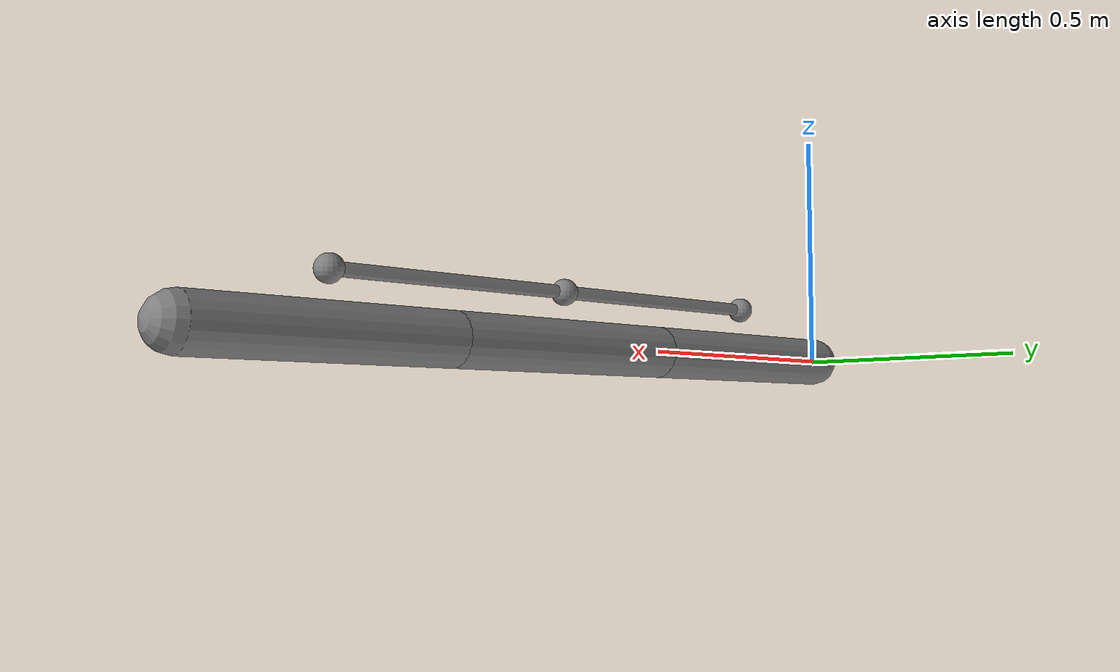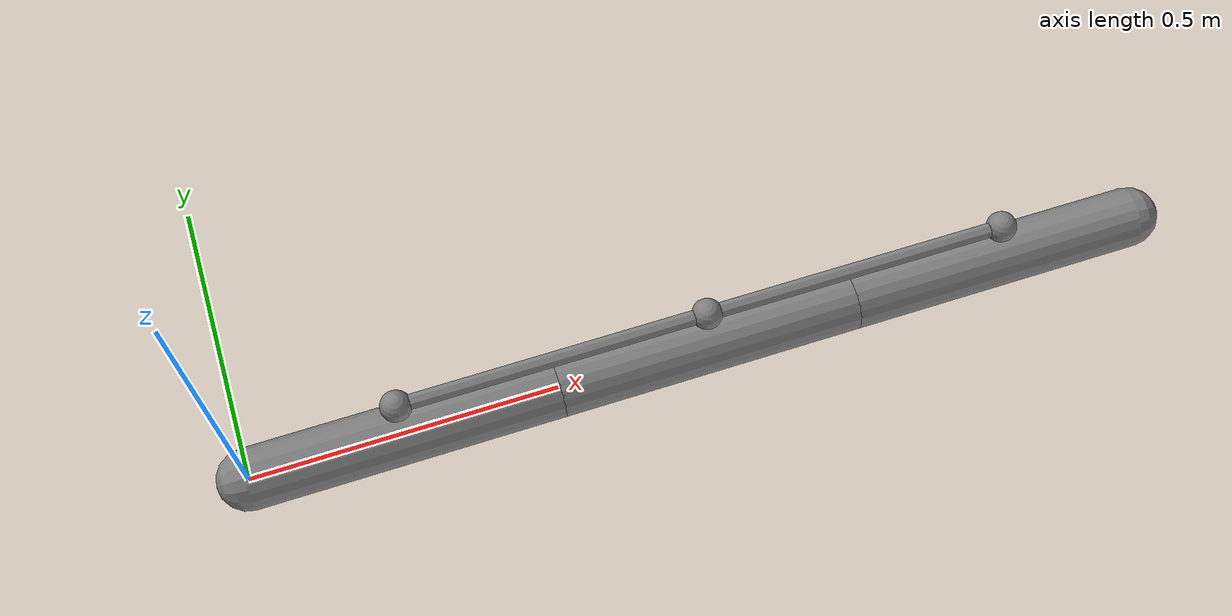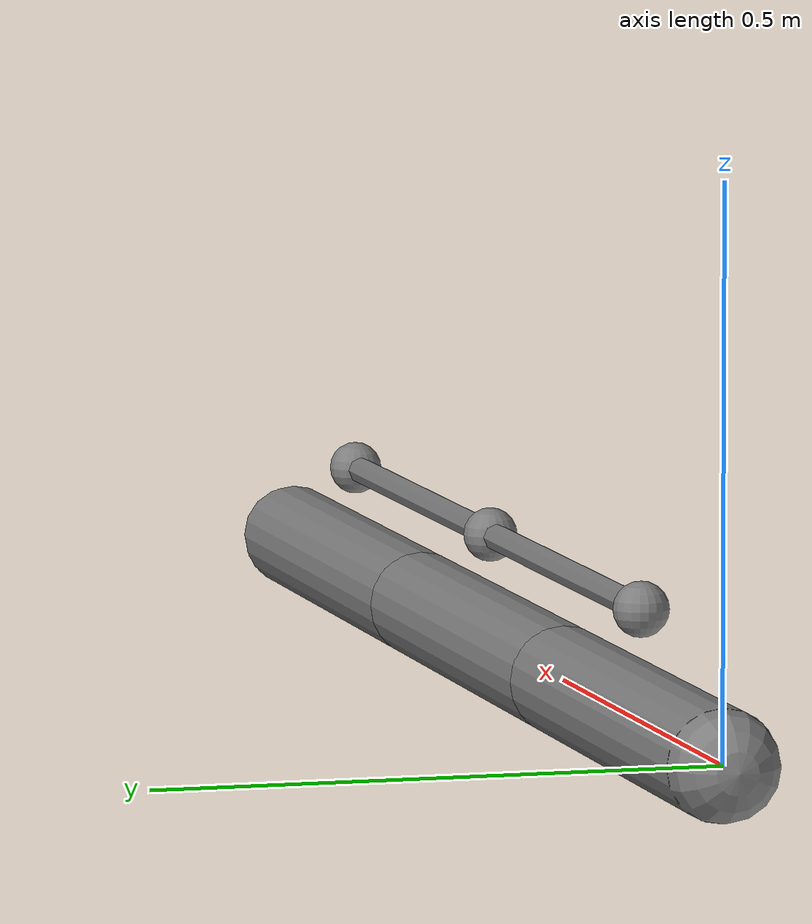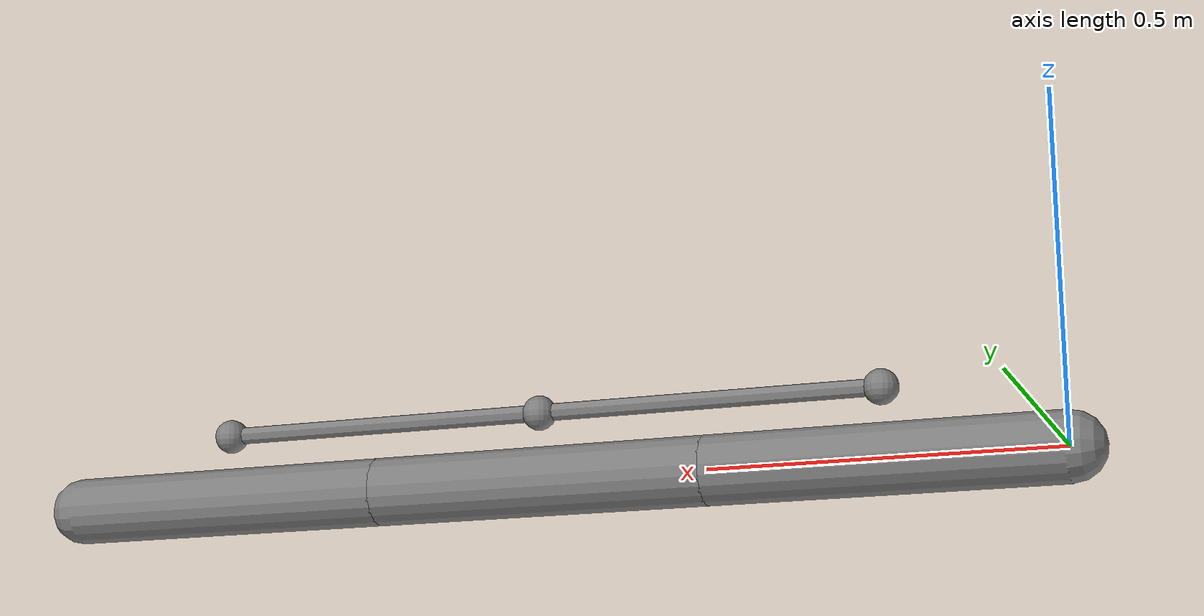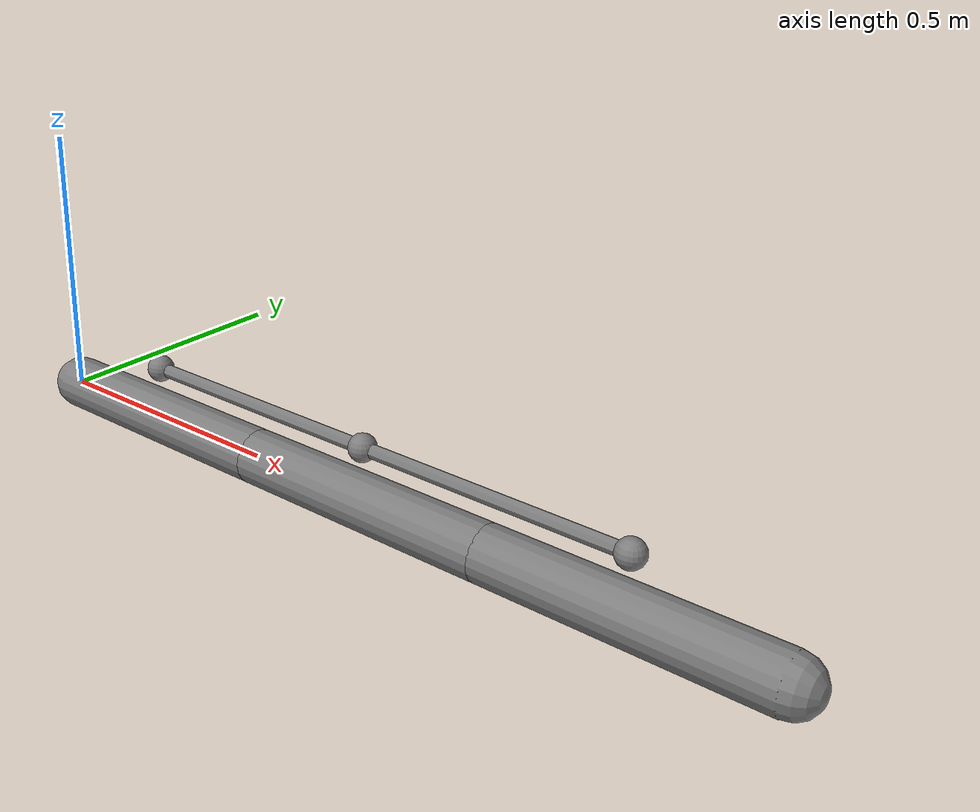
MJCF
<mujoco model="site">
  <compiler meshdir="F:/--CodeRepo/--CodeRepo/Research/___Mujoco/mujoco/mujoco/icse27/mujoco_rl_fuzz_2.0/.cache/repos/mjx/mjx/mujoco/mjx/test_data/tendon" texturedir="F:/--CodeRepo/--CodeRepo/Research/___Mujoco/mujoco/mujoco/icse27/mujoco_rl_fuzz_2.0/.cache/repos/mjx/mjx/mujoco/mjx/test_data/tendon" assetdir="F:/--CodeRepo/--CodeRepo/Research/___Mujoco/mujoco/mujoco/icse27/mujoco_rl_fuzz_2.0/.cache/repos/mjx/mjx/mujoco/mjx/test_data/tendon"/><worldbody>
    <body>
      <joint type="hinge" axis="0 1 0"/>
      <geom type="capsule" size="0.05 0.5" fromto="0 0 0 0.5 0 0"/>
      <site name="site0" pos="0.25 0 0.1" size="0.025"/>
      <body pos="0.5 0 0">
        <joint type="hinge" axis="0 1 0"/>
        <geom type="capsule" size="0.05 0.5" fromto="0 0 0 0.5 0 0"/>
        <site name="site1" pos="0.25 0 0.1" size="0.025"/>
        <body pos="0.5 0 0">
          <joint type="hinge" axis="0 1 0"/>
          <geom type="capsule" size="0.05 0.5" fromto="0 0 0 0.5 0 0"/>
          <site name="site2" pos="0.25 0 0.1" size="0.025"/>
        </body>
      </body>
    </body>
  </worldbody>
  <tendon>
    <spatial width="0.0125">
      <site site="site0"/>
      <site site="site1"/>
      <site site="site2"/>
    </spatial>
  </tendon>
</mujoco>
